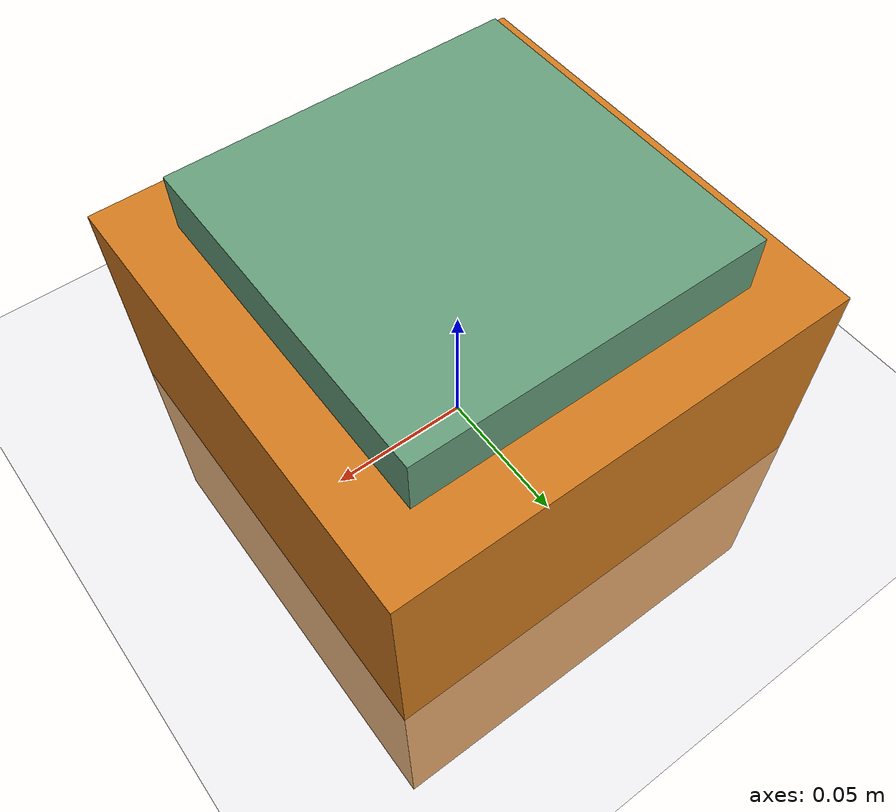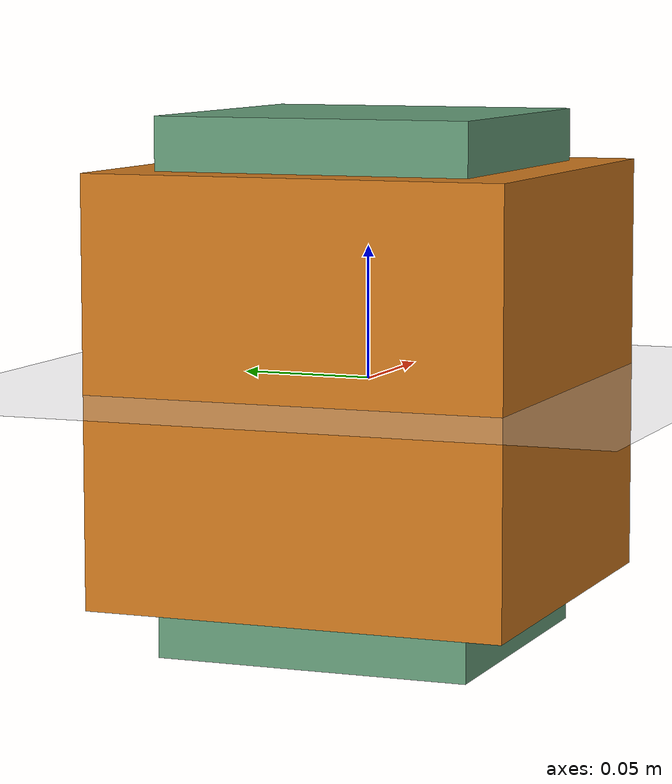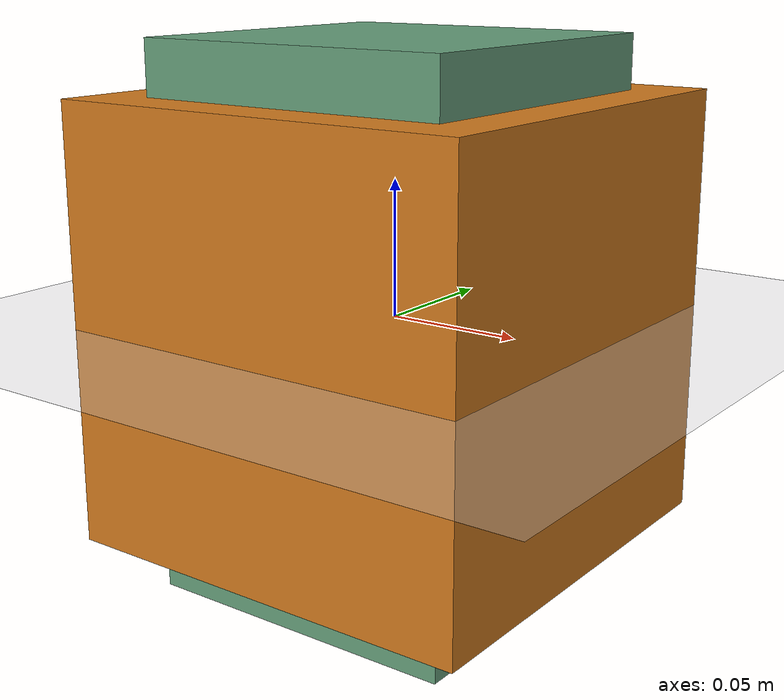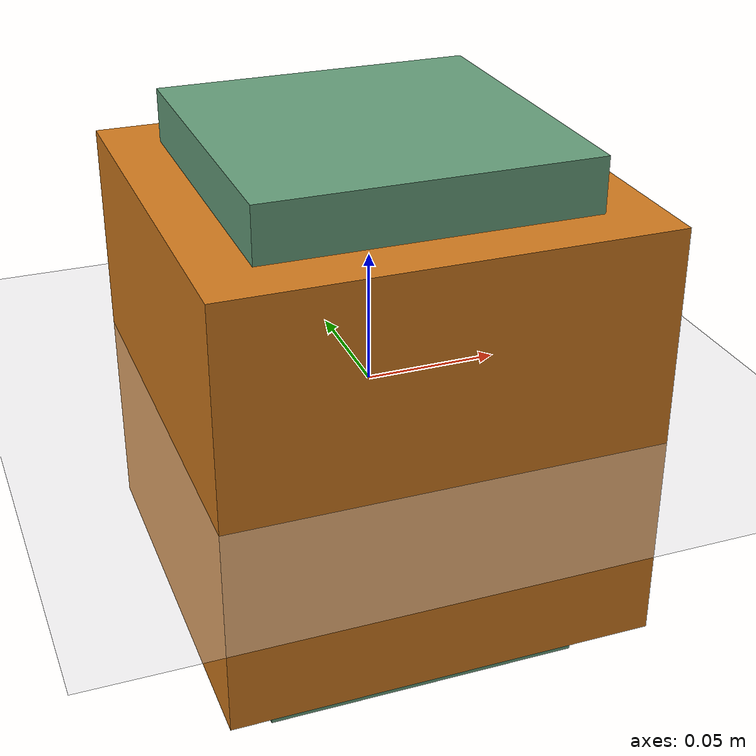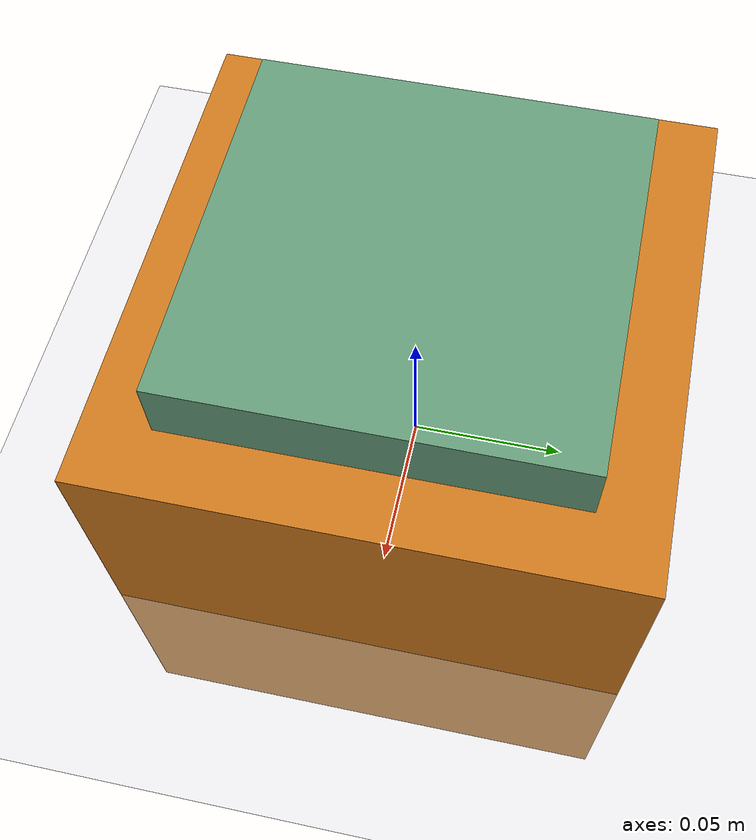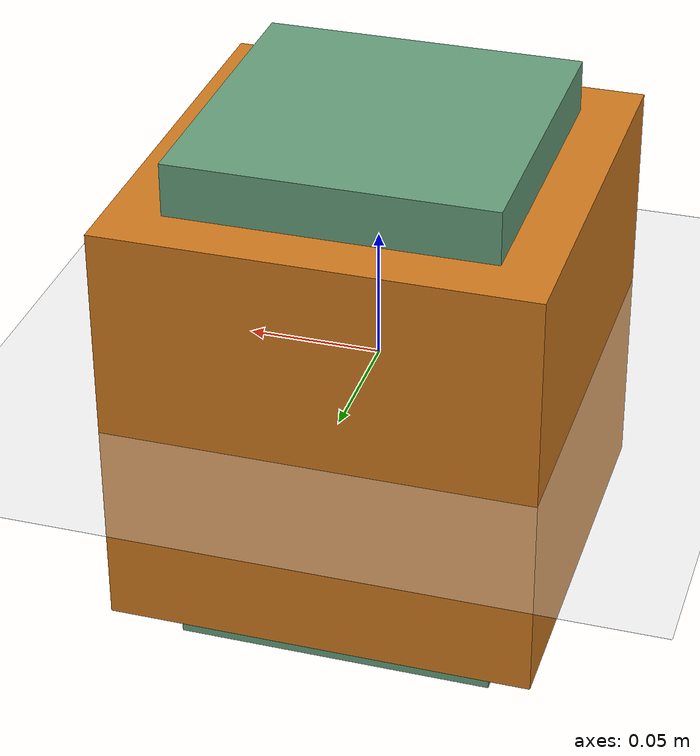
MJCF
<mujoco model="ppp_unit">
  <compiler angle="radian" coordinate="local"/>
  <option timestep="0.002" gravity="0 0 -9.81" integrator="implicitfast"/>

  <visual>
    <global offwidth="1280" offheight="720"/>
  </visual>

  <worldbody>
    <light pos="2 2 4" dir="0 0 -1" directional="true"/>
    <geom name="floor" type="plane" size="5 5 0.05" rgba="0.85 0.85 0.88 1"/>

    <body name="x_carriage" gravcomp="1">
      <inertial pos="0 0 0" mass="1.0" diaginertia="0.01 0.01 0.01"/>
      <joint name="joint_x" type="slide" axis="1 0 0" range="0 4" damping="1"/>
      <geom type="box" size="0.08 0.08 0.08" mass="1.0" rgba="0.82 0.48 0.12 1"
            contype="0" conaffinity="0"/>

      <body name="y_carriage" gravcomp="1">
        <inertial pos="0 0 0" mass="0.8" diaginertia="0.008 0.008 0.008"/>
        <joint name="joint_y" type="slide" axis="0 1 0" range="0 4" damping="1"/>
        <geom type="box" size="0.07 0.07 0.07" mass="0.8" rgba="0.88 0.68 0.15 1"
              contype="0" conaffinity="0"/>

        <body name="z_hoist" gravcomp="1">
          <inertial pos="0 0 0" mass="0.6" diaginertia="0.006 0.006 0.006"/>
          <joint name="joint_z" type="slide" axis="0 0 1" range="0 3" damping="1"/>
          <geom type="box" size="0.06 0.06 0.10" mass="0.6" rgba="0.40 0.62 0.48 1"
                contype="0" conaffinity="0"/>
        </body>
      </body>
    </body>

    <camera name="overview" pos="3 3 3" xyaxes="-0.7 0.7 0 -0.4 -0.4 0.8"/>
  </worldbody>

  <actuator>
    <velocity name="act_joint_x" joint="joint_x" kv="200"
              forcelimited="true" forcerange="-500 500" ctrlrange="-3 3"/>
    <velocity name="act_joint_y" joint="joint_y" kv="200"
              forcelimited="true" forcerange="-500 500" ctrlrange="-3 3"/>
    <velocity name="act_joint_z" joint="joint_z" kv="300"
              forcelimited="true" forcerange="-500 500" ctrlrange="-3 3"/>
  </actuator>
</mujoco>
